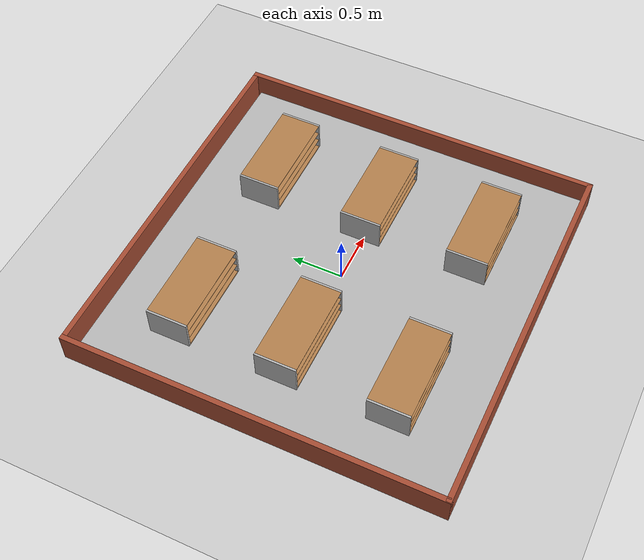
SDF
<sdf version="1.6">
 <world name="default">
  <light name="sun" type="directional">
   <pose>0 0 10 0 -0 0</pose>
   <diffuse>0.8 0.8 0.8 1</diffuse>
   <specular>0.2 0.2 0.2 1</specular>
   <attenuation>
    <range>1000</range>
    <constant>0.9</constant>
    <linear>0.01</linear>
    <quadratic>0.001</quadratic>
   </attenuation>
   <direction>-0.5 0.1 -0.9</direction>
  </light>
  <gravity>0 0 -9.8</gravity>
  <magnetic_field>6e-06 2.3e-05 -4.2e-05</magnetic_field>
  <atmosphere type="adiabatic"/>
  <physics name="default_physics" default="0" type="ode">
   <max_step_size>0.001</max_step_size>
   <real_time_factor>1</real_time_factor>
   <real_time_update_rate>1000</real_time_update_rate>
  </physics>
  <scene><ambient>0.4 0.4 0.4 1</ambient><background>0.7 0.7 0.7 1</background><shadows>1</shadows></scene>
  <spherical_coordinates>
   <surface_model>EARTH_WGS84</surface_model>
   <latitude_deg>0</latitude_deg>
   <longitude_deg>0</longitude_deg>
   <elevation>0</elevation>
   <heading_deg>0</heading_deg>
  </spherical_coordinates>
  <model name="ground_plane">
   <static>1</static>
   <link name="link">
    <collision name="collision">
     <geometry><plane><normal>0 0 1</normal><size>100 100</size></plane></geometry>
     <surface>
      <contact><collide_bitmask>65535</collide_bitmask></contact>
      <friction><ode><mu>100</mu><mu2>50</mu2></ode></friction>
     </surface>
    </collision>
    <visual name="visual">
     <cast_shadows>0</cast_shadows>
     <geometry><plane><normal>0 0 1</normal><size>100 100</size></plane></geometry>
     <material>
      <script><uri>file://media/materials/scripts/gazebo.material</uri><name>Gazebo/Grey</name></script>
     </material>
    </visual>
   </link>
   <pose>0.012778 0.030832 0 0 -0 0</pose>
  </model>
  <model name="arm_map">
   <pose>0 0 0.05 0 -0 0</pose>
   <link name="box">
    <collision name="collision"><geometry><box><size>3.5 3.5 0.1</size></box></geometry></collision>
    <visual name="visual">
     <geometry><box><size>3.5 3.5 0.1</size></box></geometry>
     <material>
      <script>
       <uri>model://arm_map/materials/scripts</uri>
       <uri>model://arm_map/materials/textures</uri>
       <name>arm_map</name>
      </script>
     </material>
    </visual>
    <inertial>
     <inertia><ixx>1</ixx><ixy>0</ixy><ixz>0</ixz><iyy>1</iyy><iyz>0</iyz><izz>1</izz></inertia>
     <mass>1</mass>
    </inertial>
   </link>
   <static>1</static>
  </model>
  <model name="Untitled">
   <pose>-0.01256 0.014 0 0 -0 0</pose>
   <link name="Wall_10">
    <collision name="Wall_10_Collision">
     <geometry><box><size>3.65 0.05 0.3</size></box></geometry>
     <pose>0 0 0.15 0 -0 0</pose>
    </collision>
    <visual name="Wall_10_Visual">
     <pose>0 0 0.15 0 -0 0</pose>
     <geometry><box><size>3.65 0.05 0.3</size></box></geometry>
     <material>
      <script><uri>file://media/materials/scripts/gazebo.material</uri><name>Gazebo/Bricks</name></script>
      <ambient>1 1 1 1</ambient>
     </material>
     <meta><layer>0</layer></meta>
    </visual>
    <pose>1.80356 0 0 0 -0 1.5708</pose>
   </link>
   <link name="Wall_11">
    <collision name="Wall_11_Collision">
     <geometry><box><size>3.64556 0.05 0.3</size></box></geometry>
     <pose>0 0 0.15 0 -0 0</pose>
    </collision>
    <visual name="Wall_11_Visual">
     <pose>0 0 0.15 0 -0 0</pose>
     <geometry><box><size>3.64556 0.05 0.3</size></box></geometry>
     <material>
      <script><uri>file://media/materials/scripts/gazebo.material</uri><name>Gazebo/Bricks</name></script>
      <ambient>1 1 1 1</ambient>
     </material>
     <meta><layer>0</layer></meta>
    </visual>
    <pose>0.005783 1.8 0 0 -0 3.14159</pose>
   </link>
   <link name="Wall_12">
    <collision name="Wall_12_Collision">
     <geometry><box><size>3.65 0.05 0.3</size></box></geometry>
     <pose>0 0 0.15 0 -0 0</pose>
    </collision>
    <visual name="Wall_12_Visual">
     <pose>0 0 0.15 0 -0 0</pose>
     <geometry><box><size>3.65 0.05 0.3</size></box></geometry>
     <material>
      <script><uri>file://media/materials/scripts/gazebo.material</uri><name>Gazebo/Bricks</name></script>
      <ambient>1 1 1 1</ambient>
     </material>
     <meta><layer>0</layer></meta>
    </visual>
    <pose>-1.80356 0 0 0 0 -1.5708</pose>
   </link>
   <link name="Wall_13">
    <collision name="Wall_13_Collision">
     <geometry><box><size>0.054437 0.05 0.3</size></box></geometry>
     <pose>0 0 0.15 0 -0 0</pose>
    </collision>
    <visual name="Wall_13_Visual">
     <pose>0 0 0.15 0 -0 0</pose>
     <geometry><box><size>0.054437 0.05 0.3</size></box></geometry>
     <material>
      <script><uri>file://media/materials/scripts/gazebo.material</uri><name>Gazebo/Bricks</name></script>
      <ambient>1 1 1 1</ambient>
     </material>
     <meta><layer>0</layer></meta>
    </visual>
    <pose>-1.79422 -1.8 0 0 -0 3.14159</pose>
   </link>
   <link name="Wall_6">
    <collision name="Wall_6_Collision">
     <geometry><box><size>3.65 0.05 0.3</size></box></geometry>
     <pose>0 0 0.15 0 -0 0</pose>
    </collision>
    <visual name="Wall_6_Visual">
     <pose>0 0 0.15 0 -0 0</pose>
     <geometry><box><size>3.65 0.05 0.3</size></box></geometry>
     <material>
      <script><uri>file://media/materials/scripts/gazebo.material</uri><name>Gazebo/Bricks</name></script>
      <ambient>1 1 1 1</ambient>
     </material>
     <meta><layer>0</layer></meta>
    </visual>
    <pose>0.003564 -1.8 0 0 -0 0</pose>
   </link>
   <static>1</static>
  </model>
  <model name="bookshelf_i">
   <static>1</static>
   <link name="link">
    <inertial><mass>1</mass></inertial>
    <collision name="left_side">
     <pose>0.45 -0.195 0.15 0 -0 0</pose>
     <geometry><box><size>0.02 0.4 0.3</size></box></geometry>
    </collision>
    <visual name="visual2">
     <pose>0.45 -0.195 0.15 0 -0 0</pose>
     <geometry><box><size>0.02 0.4 0.3</size></box></geometry>
     <material>
      <script>
       <uri>model://bookshelf_i/materials11/scripts</uri>
       <uri>model://bookshelf_i/materials11/textures</uri>
       <name>BookShelf/11</name>
      </script>
     </material>
    </visual>
    <collision name="right_side">
     <pose>-0.45 -0.195 0.15 0 -0 0</pose>
     <geometry><box><size>0.02 0.4 0.3</size></box></geometry>
    </collision>
    <visual name="visual3">
     <pose>-0.45 -0.195 0.15 0 -0 0</pose>
     <geometry><box><size>0.02 0.4 0.3</size></box></geometry>
     <material>
      <script>
       <uri>model://bookshelf_i/materials11/scripts</uri>
       <uri>model://bookshelf_i/materials11/textures</uri>
       <name>BookShelf/11</name>
      </script>
     </material>
    </visual>
    <collision name="bottom">
     <pose>0 -0.195 0.0075 0 -0 0</pose>
     <geometry><box><size>0.88 0.4 0.015</size></box></geometry>
    </collision>
    <visual name="visual4">
     <pose>0 -0.195 0.0075 0 -0 0</pose>
     <geometry><box><size>0.88 0.4 0.015</size></box></geometry>
     <material>
      <script><uri>file://media/materials/scripts/gazebo.material</uri><name>Gazebo/Wood</name></script>
     </material>
    </visual>
    <collision name="top">
     <pose>0 -0.195 0.2975 0 -0 0</pose>
     <geometry><box><size>0.88 0.4 0.005</size></box></geometry>
    </collision>
    <visual name="visual5">
     <pose>0 -0.195 0.2975 0 -0 0</pose>
     <geometry><box><size>0.88 0.4 0.005</size></box></geometry>
     <material>
      <script><uri>file://media/materials/scripts/gazebo.material</uri><name>Gazebo/Wood</name></script>
     </material>
    </visual>
    <collision name="low_shelf">
     <pose>0 -0.195 0.1075 0 -0 0</pose>
     <geometry><box><size>0.88 0.4 0.005</size></box></geometry>
    </collision>
    <visual name="visual6">
     <pose>0 -0.195 0.1075 0 -0 0</pose>
     <geometry><box><size>0.88 0.4 0.005</size></box></geometry>
     <material>
      <script><uri>file://media/materials/scripts/gazebo.material</uri><name>Gazebo/Wood</name></script>
     </material>
    </visual>
    <collision name="high_shelf">
     <pose>0 -0.195 0.2 0 -0 0</pose>
     <geometry><box><size>0.88 0.4 0.005</size></box></geometry>
    </collision>
    <visual name="visual7">
     <pose>0 -0.195 0.2 0 -0 0</pose>
     <geometry><box><size>0.88 0.4 0.005</size></box></geometry>
     <material>
      <script><uri>file://media/materials/scripts/gazebo.material</uri><name>Gazebo/Wood</name></script>
     </material>
    </visual>
   </link>
   <pose>0.863288 1.25554 0.1 0 -0 0</pose>
  </model>
  <model name="bookshelf_i_clone">
   <static>1</static>
   <link name="link">
    <inertial><mass>1</mass></inertial>
    <collision name="left_side">
     <pose>0.45 -0.195 0.15 0 -0 0</pose>
     <geometry><box><size>0.02 0.4 0.3</size></box></geometry>
    </collision>
    <visual name="visual2">
     <pose>0.45 -0.195 0.15 0 -0 0</pose>
     <geometry><box><size>0.02 0.4 0.3</size></box></geometry>
     <material>
      <script>
       <uri>model://bookshelf_i/materials12/scripts</uri>
       <uri>model://bookshelf_i/materials12/textures</uri>
       <name>BookShelf/12</name>
      </script>
     </material>
    </visual>
    <collision name="right_side">
     <pose>-0.45 -0.195 0.15 0 -0 0</pose>
     <geometry><box><size>0.02 0.4 0.3</size></box></geometry>
    </collision>
    <visual name="visual3">
     <pose>-0.45 -0.195 0.15 0 -0 0</pose>
     <geometry><box><size>0.02 0.4 0.3</size></box></geometry>
     <material>
      <script>
       <uri>model://bookshelf_i/materials12/scripts</uri>
       <uri>model://bookshelf_i/materials12/textures</uri>
       <name>BookShelf/12</name>
      </script>
     </material>
    </visual>
    <collision name="bottom">
     <pose>0 -0.195 0.0075 0 -0 0</pose>
     <geometry><box><size>0.88 0.4 0.015</size></box></geometry>
    </collision>
    <visual name="visual4">
     <pose>0 -0.195 0.0075 0 -0 0</pose>
     <geometry><box><size>0.88 0.4 0.015</size></box></geometry>
     <material>
      <script><uri>file://media/materials/scripts/gazebo.material</uri><name>Gazebo/Wood</name></script>
     </material>
    </visual>
    <collision name="top">
     <pose>0 -0.195 0.2975 0 -0 0</pose>
     <geometry><box><size>0.88 0.4 0.005</size></box></geometry>
    </collision>
    <visual name="visual5">
     <pose>0 -0.195 0.2975 0 -0 0</pose>
     <geometry><box><size>0.88 0.4 0.005</size></box></geometry>
     <material>
      <script><uri>file://media/materials/scripts/gazebo.material</uri><name>Gazebo/Wood</name></script>
     </material>
    </visual>
    <collision name="low_shelf">
     <pose>0 -0.195 0.1075 0 -0 0</pose>
     <geometry><box><size>0.88 0.4 0.005</size></box></geometry>
    </collision>
    <visual name="visual6">
     <pose>0 -0.195 0.1075 0 -0 0</pose>
     <geometry><box><size>0.88 0.4 0.005</size></box></geometry>
     <material>
      <script><uri>file://media/materials/scripts/gazebo.material</uri><name>Gazebo/Wood</name></script>
     </material>
    </visual>
    <collision name="high_shelf">
     <pose>0 -0.195 0.2 0 -0 0</pose>
     <geometry><box><size>0.88 0.4 0.005</size></box></geometry>
    </collision>
    <visual name="visual7">
     <pose>0 -0.195 0.2 0 -0 0</pose>
     <geometry><box><size>0.88 0.4 0.005</size></box></geometry>
     <material>
      <script><uri>file://media/materials/scripts/gazebo.material</uri><name>Gazebo/Wood</name></script>
     </material>
    </visual>
   </link>
   <pose>0.860387 0.195822 0.1 0 -0 0</pose>
  </model>
  <model name="bookshelf_i_clone_0">
   <static>1</static>
   <link name="link">
    <inertial><mass>1</mass></inertial>
    <collision name="left_side">
     <pose>0.45 -0.195 0.15 0 -0 0</pose>
     <geometry><box><size>0.02 0.4 0.3</size></box></geometry>
    </collision>
    <visual name="visual2">
     <pose>0.45 -0.195 0.15 0 -0 0</pose>
     <geometry><box><size>0.02 0.4 0.3</size></box></geometry>
     <material>
      <script>
       <uri>model://bookshelf_i/materials13/scripts</uri>
       <uri>model://bookshelf_i/materials13/textures</uri>
       <name>BookShelf/13</name>
      </script>
     </material>
    </visual>
    <collision name="right_side">
     <pose>-0.45 -0.195 0.15 0 -0 0</pose>
     <geometry><box><size>0.02 0.4 0.3</size></box></geometry>
    </collision>
    <visual name="visual3">
     <pose>-0.45 -0.195 0.15 0 -0 0</pose>
     <geometry><box><size>0.02 0.4 0.3</size></box></geometry>
     <material>
      <script>
       <uri>model://bookshelf_i/materials13/scripts</uri>
       <uri>model://bookshelf_i/materials13/textures</uri>
       <name>BookShelf/13</name>
      </script>
     </material>
    </visual>
    <collision name="bottom">
     <pose>0 -0.195 0.0075 0 -0 0</pose>
     <geometry><box><size>0.88 0.4 0.015</size></box></geometry>
    </collision>
    <visual name="visual4">
     <pose>0 -0.195 0.0075 0 -0 0</pose>
     <geometry><box><size>0.88 0.4 0.015</size></box></geometry>
     <material>
      <script><uri>file://media/materials/scripts/gazebo.material</uri><name>Gazebo/Wood</name></script>
     </material>
    </visual>
    <collision name="top">
     <pose>0 -0.195 0.2975 0 -0 0</pose>
     <geometry><box><size>0.88 0.4 0.005</size></box></geometry>
    </collision>
    <visual name="visual5">
     <pose>0 -0.195 0.2975 0 -0 0</pose>
     <geometry><box><size>0.88 0.4 0.005</size></box></geometry>
     <material>
      <script><uri>file://media/materials/scripts/gazebo.material</uri><name>Gazebo/Wood</name></script>
     </material>
    </visual>
    <collision name="low_shelf">
     <pose>0 -0.195 0.1075 0 -0 0</pose>
     <geometry><box><size>0.88 0.4 0.005</size></box></geometry>
    </collision>
    <visual name="visual6">
     <pose>0 -0.195 0.1075 0 -0 0</pose>
     <geometry><box><size>0.88 0.4 0.005</size></box></geometry>
     <material>
      <script><uri>file://media/materials/scripts/gazebo.material</uri><name>Gazebo/Wood</name></script>
     </material>
    </visual>
    <collision name="high_shelf">
     <pose>0 -0.195 0.2 0 -0 0</pose>
     <geometry><box><size>0.88 0.4 0.005</size></box></geometry>
    </collision>
    <visual name="visual7">
     <pose>0 -0.195 0.2 0 -0 0</pose>
     <geometry><box><size>0.88 0.4 0.005</size></box></geometry>
     <material>
      <script><uri>file://media/materials/scripts/gazebo.material</uri><name>Gazebo/Wood</name></script>
     </material>
    </visual>
   </link>
   <pose>0.861455 -0.859103 0.1 0 -0 0</pose>
  </model>
  <model name="bookshelf_i_clone_clone">
   <static>1</static>
   <link name="link">
    <inertial><mass>1</mass></inertial>
    <collision name="left_side">
     <pose>0.45 -0.195 0.15 0 -0 0</pose>
     <geometry><box><size>0.02 0.4 0.3</size></box></geometry>
    </collision>
    <visual name="visual2">
     <pose>0.45 -0.195 0.15 0 -0 0</pose>
     <geometry><box><size>0.02 0.4 0.3</size></box></geometry>
     <material>
      <script>
       <uri>model://bookshelf_i/materials22/scripts</uri>
       <uri>model://bookshelf_i/materials22/textures</uri>
       <name>BookShelf/22</name>
      </script>
     </material>
    </visual>
    <collision name="right_side">
     <pose>-0.45 -0.195 0.15 0 -0 0</pose>
     <geometry><box><size>0.02 0.4 0.3</size></box></geometry>
    </collision>
    <visual name="visual3">
     <pose>-0.45 -0.195 0.15 0 -0 0</pose>
     <geometry><box><size>0.02 0.4 0.3</size></box></geometry>
     <material>
      <script>
       <uri>model://bookshelf_i/materials22/scripts</uri>
       <uri>model://bookshelf_i/materials22/textures</uri>
       <name>BookShelf/22</name>
      </script>
     </material>
    </visual>
    <collision name="bottom">
     <pose>0 -0.195 0.0075 0 -0 0</pose>
     <geometry><box><size>0.88 0.4 0.015</size></box></geometry>
    </collision>
    <visual name="visual4">
     <pose>0 -0.195 0.0075 0 -0 0</pose>
     <geometry><box><size>0.88 0.4 0.015</size></box></geometry>
     <material>
      <script><uri>file://media/materials/scripts/gazebo.material</uri><name>Gazebo/Wood</name></script>
     </material>
    </visual>
    <collision name="top">
     <pose>0 -0.195 0.2975 0 -0 0</pose>
     <geometry><box><size>0.88 0.4 0.005</size></box></geometry>
    </collision>
    <visual name="visual5">
     <pose>0 -0.195 0.2975 0 -0 0</pose>
     <geometry><box><size>0.88 0.4 0.005</size></box></geometry>
     <material>
      <script><uri>file://media/materials/scripts/gazebo.material</uri><name>Gazebo/Wood</name></script>
     </material>
    </visual>
    <collision name="low_shelf">
     <pose>0 -0.195 0.1075 0 -0 0</pose>
     <geometry><box><size>0.88 0.4 0.005</size></box></geometry>
    </collision>
    <visual name="visual6">
     <pose>0 -0.195 0.1075 0 -0 0</pose>
     <geometry><box><size>0.88 0.4 0.005</size></box></geometry>
     <material>
      <script><uri>file://media/materials/scripts/gazebo.material</uri><name>Gazebo/Wood</name></script>
     </material>
    </visual>
    <collision name="high_shelf">
     <pose>0 -0.195 0.2 0 -0 0</pose>
     <geometry><box><size>0.88 0.4 0.005</size></box></geometry>
    </collision>
    <visual name="visual7">
     <pose>0 -0.195 0.2 0 -0 0</pose>
     <geometry><box><size>0.88 0.4 0.005</size></box></geometry>
     <material>
      <script><uri>file://media/materials/scripts/gazebo.material</uri><name>Gazebo/Wood</name></script>
     </material>
    </visual>
   </link>
   <pose>-0.866735 0.197513 0.1 0 -0 0</pose>
  </model>
  <model name="bookshelf_i_clone_clone_0">
   <static>1</static>
   <link name="link">
    <inertial><mass>1</mass></inertial>
    <collision name="left_side">
     <pose>0.45 -0.195 0.15 0 -0 0</pose>
     <geometry><box><size>0.02 0.4 0.3</size></box></geometry>
    </collision>
    <visual name="visual2">
     <pose>0.45 -0.195 0.15 0 -0 0</pose>
     <geometry><box><size>0.02 0.4 0.3</size></box></geometry>
     <material>
      <script>
       <uri>model://bookshelf_i/materials23/scripts</uri>
       <uri>model://bookshelf_i/materials23/textures</uri>
       <name>BookShelf/23</name>
      </script>
     </material>
    </visual>
    <collision name="right_side">
     <pose>-0.45 -0.195 0.15 0 -0 0</pose>
     <geometry><box><size>0.02 0.4 0.3</size></box></geometry>
    </collision>
    <visual name="visual3">
     <pose>-0.45 -0.195 0.15 0 -0 0</pose>
     <geometry><box><size>0.02 0.4 0.3</size></box></geometry>
     <material>
      <script>
       <uri>model://bookshelf_i/materials23/scripts</uri>
       <uri>model://bookshelf_i/materials23/textures</uri>
       <name>BookShelf/23</name>
      </script>
     </material>
    </visual>
    <collision name="bottom">
     <pose>0 -0.195 0.0075 0 -0 0</pose>
     <geometry><box><size>0.88 0.4 0.015</size></box></geometry>
    </collision>
    <visual name="visual4">
     <pose>0 -0.195 0.0075 0 -0 0</pose>
     <geometry><box><size>0.88 0.4 0.015</size></box></geometry>
     <material>
      <script><uri>file://media/materials/scripts/gazebo.material</uri><name>Gazebo/Wood</name></script>
     </material>
    </visual>
    <collision name="top">
     <pose>0 -0.195 0.2975 0 -0 0</pose>
     <geometry><box><size>0.88 0.4 0.005</size></box></geometry>
    </collision>
    <visual name="visual5">
     <pose>0 -0.195 0.2975 0 -0 0</pose>
     <geometry><box><size>0.88 0.4 0.005</size></box></geometry>
     <material>
      <script><uri>file://media/materials/scripts/gazebo.material</uri><name>Gazebo/Wood</name></script>
     </material>
    </visual>
    <collision name="low_shelf">
     <pose>0 -0.195 0.1075 0 -0 0</pose>
     <geometry><box><size>0.88 0.4 0.005</size></box></geometry>
    </collision>
    <visual name="visual6">
     <pose>0 -0.195 0.1075 0 -0 0</pose>
     <geometry><box><size>0.88 0.4 0.005</size></box></geometry>
     <material>
      <script><uri>file://media/materials/scripts/gazebo.material</uri><name>Gazebo/Wood</name></script>
     </material>
    </visual>
    <collision name="high_shelf">
     <pose>0 -0.195 0.2 0 -0 0</pose>
     <geometry><box><size>0.88 0.4 0.005</size></box></geometry>
    </collision>
    <visual name="visual7">
     <pose>0 -0.195 0.2 0 -0 0</pose>
     <geometry><box><size>0.88 0.4 0.005</size></box></geometry>
     <material>
      <script><uri>file://media/materials/scripts/gazebo.material</uri><name>Gazebo/Wood</name></script>
     </material>
    </visual>
   </link>
   <pose>-0.865276 -0.848832 0.1 0 -0 0</pose>
  </model>
  <model name="bookshelf_i_clone_clone_1">
   <static>1</static>
   <link name="link">
    <inertial><mass>1</mass></inertial>
    <collision name="left_side">
     <pose>0.45 -0.195 0.15 0 -0 0</pose>
     <geometry><box><size>0.02 0.4 0.3</size></box></geometry>
    </collision>
    <visual name="visual2">
     <pose>0.45 -0.195 0.15 0 -0 0</pose>
     <geometry><box><size>0.02 0.4 0.3</size></box></geometry>
     <material>
      <script>
       <uri>model://bookshelf_i/materials21/scripts</uri>
       <uri>model://bookshelf_i/materials21/textures</uri>
       <name>BookShelf/21</name>
      </script>
     </material>
    </visual>
    <collision name="right_side">
     <pose>-0.45 -0.195 0.15 0 -0 0</pose>
     <geometry><box><size>0.02 0.4 0.3</size></box></geometry>
    </collision>
    <visual name="visual3">
     <pose>-0.45 -0.195 0.15 0 -0 0</pose>
     <geometry><box><size>0.02 0.4 0.3</size></box></geometry>
     <material>
      <script>
       <uri>model://bookshelf_i/materials21/scripts</uri>
       <uri>model://bookshelf_i/materials21/textures</uri>
       <name>BookShelf/21</name>
      </script>
     </material>
    </visual>
    <collision name="bottom">
     <pose>0 -0.195 0.0075 0 -0 0</pose>
     <geometry><box><size>0.88 0.4 0.015</size></box></geometry>
    </collision>
    <visual name="visual4">
     <pose>0 -0.195 0.0075 0 -0 0</pose>
     <geometry><box><size>0.88 0.4 0.015</size></box></geometry>
     <material>
      <script><uri>file://media/materials/scripts/gazebo.material</uri><name>Gazebo/Wood</name></script>
     </material>
    </visual>
    <collision name="top">
     <pose>0 -0.195 0.2975 0 -0 0</pose>
     <geometry><box><size>0.88 0.4 0.005</size></box></geometry>
    </collision>
    <visual name="visual5">
     <pose>0 -0.195 0.2975 0 -0 0</pose>
     <geometry><box><size>0.88 0.4 0.005</size></box></geometry>
     <material>
      <script><uri>file://media/materials/scripts/gazebo.material</uri><name>Gazebo/Wood</name></script>
     </material>
    </visual>
    <collision name="low_shelf">
     <pose>0 -0.195 0.1075 0 -0 0</pose>
     <geometry><box><size>0.88 0.4 0.005</size></box></geometry>
    </collision>
    <visual name="visual6">
     <pose>0 -0.195 0.1075 0 -0 0</pose>
     <geometry><box><size>0.88 0.4 0.005</size></box></geometry>
     <material>
      <script><uri>file://media/materials/scripts/gazebo.material</uri><name>Gazebo/Wood</name></script>
     </material>
    </visual>
    <collision name="high_shelf">
     <pose>0 -0.195 0.2 0 -0 0</pose>
     <geometry><box><size>0.88 0.4 0.005</size></box></geometry>
    </collision>
    <visual name="visual7">
     <pose>0 -0.195 0.2 0 -0 0</pose>
     <geometry><box><size>0.88 0.4 0.005</size></box></geometry>
     <material>
      <script><uri>file://media/materials/scripts/gazebo.material</uri><name>Gazebo/Wood</name></script>
     </material>
    </visual>
   </link>
   <pose>-0.869771 1.25083 0.1 0 -0 0</pose>
  </model>
  <model name="beer_i_clone">
   <link name="link">
    <pose>0 0 0.115 0 -0 0</pose>
    <inertial>
     <mass>0.39</mass>
     <inertia><ixx>0.00058</ixx><ixy>0</ixy><ixz>0</ixz><iyy>0.00058</iyy><iyz>0</iyz><izz>0.00019</izz></inertia>
    </inertial>
    <collision name="collision">
     <geometry><cylinder><radius>0.055</radius><length>0.07</length></cylinder></geometry>
    </collision>
    <visual name="visual">
     <geometry><cylinder><radius>0.055</radius><length>0.07</length></cylinder></geometry>
     <material>
      <script>
       <uri>model://beer_i/materials/scripts</uri>
       <uri>model://beer_i/materials/textures</uri>
       <name>Beer_i/Diffuse</name>
      </script>
     </material>
    </visual>
   </link>
   <pose>-1.07583 -1.10562 0.130004 4.8e-05 4.3e-05 0.011618</pose>
  </model>
 </world>
</sdf>
